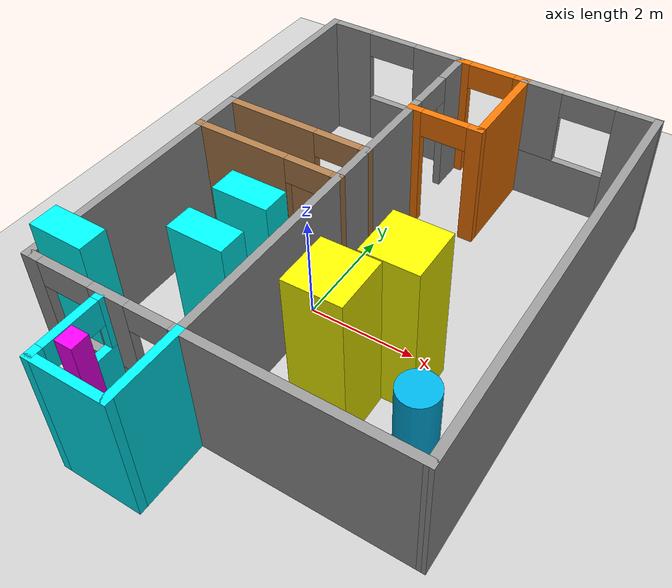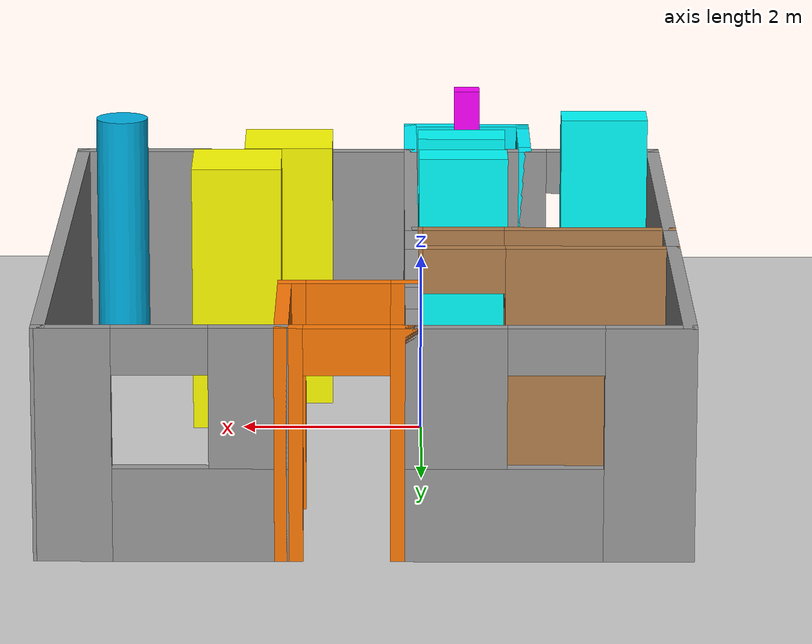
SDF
<sdf version="1.6">
 <world name="default">
  <model name="ground_plane">
   <static>1</static>
   <link name="link">
    <collision name="collision">
     <geometry><plane><normal>0 0 1</normal><size>100 100</size></plane></geometry>
     <surface><friction><ode><mu>100</mu><mu2>50</mu2></ode></friction></surface>
    </collision>
    <visual name="visual">
     <cast_shadows>0</cast_shadows>
     <geometry><plane><normal>0 0 1</normal><size>100 100</size></plane></geometry>
     <material>
      <script><uri>file://media/materials/scripts/gazebo.material</uri><name>Gazebo/Grey</name></script>
     </material>
    </visual>
   </link>
  </model>
  <model name="cozyapato">
   <pose>0.612099 0.24558 0 0 -0 0</pose>
   <link name="Wall_100">
    <collision name="Wall_100_Collision">
     <geometry><box><size>1.5 0.15 2.5</size></box></geometry>
     <pose>0 0 1.25 0 -0 0</pose>
    </collision>
    <visual name="Wall_100_Visual">
     <pose>0 0 1.25 0 -0 0</pose>
     <geometry><box><size>1.5 0.15 2.5</size></box></geometry>
     <material>
      <script><uri>file://media/materials/scripts/gazebo.material</uri><name>Gazebo/Grey</name></script>
      <ambient>0 0.952941 1 1</ambient>
     </material>
     <meta><layer>0</layer></meta>
    </visual>
    <pose>-0.499933 -4.02501 0 0 0 -1.5708</pose>
   </link>
   <link name="Wall_101">
    <collision name="Wall_101_Collision">
     <geometry><box><size>1.5 0.15 2.5</size></box></geometry>
     <pose>0 0 1.25 0 -0 0</pose>
    </collision>
    <visual name="Wall_101_Visual">
     <pose>0 0 1.25 0 -0 0</pose>
     <geometry><box><size>1.5 0.15 2.5</size></box></geometry>
     <material>
      <script><uri>file://media/materials/scripts/gazebo.material</uri><name>Gazebo/Grey</name></script>
      <ambient>0 0.952941 1 1</ambient>
     </material>
     <meta><layer>0</layer></meta>
    </visual>
    <pose>-1.17493 -4.70001 0 0 -0 3.14159</pose>
   </link>
   <link name="Wall_102">
    <pose>-1.84993 -4.02501 0 0 -0 1.5708</pose>
    <visual name="Wall_102_Visual_0">
     <pose>-0.623422 0 1.25 0 -0 0</pose>
     <geometry><box><size>0.253156 0.15 2.5</size></box></geometry>
     <material>
      <script><uri>file://media/materials/scripts/gazebo.material</uri><name>Gazebo/Grey</name></script>
      <ambient>0 0.952941 1 1</ambient>
     </material>
     <meta><layer>0</layer></meta>
    </visual>
    <collision name="Wall_102_Collision_0">
     <geometry><box><size>0.253156 0.15 2.5</size></box></geometry>
     <pose>-0.623422 0 1.25 0 -0 0</pose>
    </collision>
    <visual name="Wall_102_Visual_1">
     <pose>0.126578 0 0.75 0 -0 0</pose>
     <geometry><box><size>1.24684 0.15 1.5</size></box></geometry>
     <material>
      <script><uri>file://media/materials/scripts/gazebo.material</uri><name>Gazebo/Grey</name></script>
      <ambient>0 0.952941 1 1</ambient>
     </material>
     <meta><layer>0</layer></meta>
    </visual>
    <collision name="Wall_102_Collision_1">
     <geometry><box><size>1.24684 0.15 1.5</size></box></geometry>
     <pose>0.126578 0 0.75 0 -0 0</pose>
    </collision>
    <visual name="Wall_102_Visual_2">
     <pose>0.626578 0 2 0 -0 0</pose>
     <geometry><box><size>0.246844 0.15 1</size></box></geometry>
     <material>
      <script><uri>file://media/materials/scripts/gazebo.material</uri><name>Gazebo/Grey</name></script>
      <ambient>0 0.952941 1 1</ambient>
     </material>
     <meta><layer>0</layer></meta>
    </visual>
    <collision name="Wall_102_Collision_2">
     <geometry><box><size>0.246844 0.15 1</size></box></geometry>
     <pose>0.626578 0 2 0 -0 0</pose>
    </collision>
    <visual name="Wall_102_Visual_3">
     <pose>0.003156 0 2.25 0 -0 0</pose>
     <geometry><box><size>1 0.15 0.5</size></box></geometry>
     <material>
      <script><uri>file://media/materials/scripts/gazebo.material</uri><name>Gazebo/Grey</name></script>
      <ambient>0 0.952941 1 1</ambient>
     </material>
     <meta><layer>0</layer></meta>
    </visual>
    <collision name="Wall_102_Collision_3">
     <geometry><box><size>1 0.15 0.5</size></box></geometry>
     <pose>0.003156 0 2.25 0 -0 0</pose>
    </collision>
   </link>
   <link name="Wall_108">
    <pose>0.175067 4.7 0 0 -0 0</pose>
    <visual name="Wall_108_Visual_0">
     <pose>-0.599463 0 1.25 0 -0 0</pose>
     <geometry><box><size>0.301074 0.15 2.5</size></box></geometry>
     <material>
      <script><uri>file://media/materials/scripts/gazebo.material</uri><name>Gazebo/Grey</name></script>
      <ambient>0.996078 0.47451 0.0196078 1</ambient>
     </material>
     <meta><layer>0</layer></meta>
    </visual>
    <collision name="Wall_108_Collision_0">
     <geometry><box><size>0.301074 0.15 2.5</size></box></geometry>
     <pose>-0.599463 0 1.25 0 -0 0</pose>
    </collision>
    <visual name="Wall_108_Visual_1">
     <pose>0.600537 0 1.25 0 -0 0</pose>
     <geometry><box><size>0.298926 0.15 2.5</size></box></geometry>
     <material>
      <script><uri>file://media/materials/scripts/gazebo.material</uri><name>Gazebo/Grey</name></script>
      <ambient>0.996078 0.47451 0.0196078 1</ambient>
     </material>
     <meta><layer>0</layer></meta>
    </visual>
    <collision name="Wall_108_Collision_1">
     <geometry><box><size>0.298926 0.15 2.5</size></box></geometry>
     <pose>0.600537 0 1.25 0 -0 0</pose>
    </collision>
    <visual name="Wall_108_Visual_2">
     <pose>0.001074 0 2.25 0 -0 0</pose>
     <geometry><box><size>0.9 0.15 0.5</size></box></geometry>
     <material>
      <script><uri>file://media/materials/scripts/gazebo.material</uri><name>Gazebo/Grey</name></script>
      <ambient>0.996078 0.47451 0.0196078 1</ambient>
     </material>
     <meta><layer>0</layer></meta>
    </visual>
    <collision name="Wall_108_Collision_2">
     <geometry><box><size>0.9 0.15 0.5</size></box></geometry>
     <pose>0.001074 0 2.25 0 -0 0</pose>
    </collision>
   </link>
   <link name="Wall_109">
    <collision name="Wall_109_Collision">
     <geometry><box><size>2 0.15 2.5</size></box></geometry>
     <pose>0 0 1.25 0 -0 0</pose>
    </collision>
    <visual name="Wall_109_Visual">
     <pose>0 0 1.25 0 -0 0</pose>
     <geometry><box><size>2 0.15 2.5</size></box></geometry>
     <material>
      <script><uri>file://media/materials/scripts/gazebo.material</uri><name>Gazebo/Grey</name></script>
      <ambient>0.996078 0.47451 0.0196078 1</ambient>
     </material>
     <meta><layer>0</layer></meta>
    </visual>
    <pose>0.850067 3.77499 0 0 0 -1.5708</pose>
   </link>
   <link name="Wall_110">
    <pose>0.175067 2.84999 0 0 -0 3.14159</pose>
    <visual name="Wall_110_Visual_0">
     <pose>-0.600722 0 1.25 0 -0 0</pose>
     <geometry><box><size>0.298555 0.15 2.5</size></box></geometry>
     <material>
      <script><uri>file://media/materials/scripts/gazebo.material</uri><name>Gazebo/Grey</name></script>
      <ambient>0.996078 0.47451 0.0196078 1</ambient>
     </material>
     <meta><layer>0</layer></meta>
    </visual>
    <collision name="Wall_110_Collision_0">
     <geometry><box><size>0.298555 0.15 2.5</size></box></geometry>
     <pose>-0.600722 0 1.25 0 -0 0</pose>
    </collision>
    <visual name="Wall_110_Visual_1">
     <pose>0.599278 0 1.25 0 -0 0</pose>
     <geometry><box><size>0.301445 0.15 2.5</size></box></geometry>
     <material>
      <script><uri>file://media/materials/scripts/gazebo.material</uri><name>Gazebo/Grey</name></script>
      <ambient>0.996078 0.47451 0.0196078 1</ambient>
     </material>
     <meta><layer>0</layer></meta>
    </visual>
    <collision name="Wall_110_Collision_1">
     <geometry><box><size>0.301445 0.15 2.5</size></box></geometry>
     <pose>0.599278 0 1.25 0 -0 0</pose>
    </collision>
    <visual name="Wall_110_Visual_2">
     <pose>-0.001445 0 2.25 0 -0 0</pose>
     <geometry><box><size>0.9 0.15 0.5</size></box></geometry>
     <material>
      <script><uri>file://media/materials/scripts/gazebo.material</uri><name>Gazebo/Grey</name></script>
      <ambient>0.996078 0.47451 0.0196078 1</ambient>
     </material>
     <meta><layer>0</layer></meta>
    </visual>
    <collision name="Wall_110_Collision_2">
     <geometry><box><size>0.9 0.15 0.5</size></box></geometry>
     <pose>-0.001445 0 2.25 0 -0 0</pose>
    </collision>
   </link>
   <link name="Wall_112">
    <collision name="Wall_112_Collision">
     <geometry><box><size>3.99985 0.15 2.5</size></box></geometry>
     <pose>0 0 1.25 0 -0 0</pose>
    </collision>
    <visual name="Wall_112_Visual">
     <pose>0 0 1.25 0 -0 0</pose>
     <geometry><box><size>3.99985 0.15 2.5</size></box></geometry>
     <material>
      <script><uri>file://media/materials/scripts/gazebo.material</uri><name>Gazebo/Grey</name></script>
      <ambient>1 1 1 1</ambient>
     </material>
     <meta><layer>0</layer></meta>
    </visual>
    <pose>1.42499 -3.3502 0 0 0 -0.000101</pose>
   </link>
   <link name="Wall_113">
    <collision name="Wall_113_Collision">
     <geometry><box><size>8.2 0.15 2.5</size></box></geometry>
     <pose>0 0 1.25 0 -0 0</pose>
    </collision>
    <visual name="Wall_113_Visual">
     <pose>0 0 1.25 0 -0 0</pose>
     <geometry><box><size>8.2 0.15 2.5</size></box></geometry>
     <material>
      <script><uri>file://media/materials/scripts/gazebo.material</uri><name>Gazebo/Grey</name></script>
      <ambient>1 1 1 1</ambient>
     </material>
     <meta><layer>0</layer></meta>
    </visual>
    <pose>3.34992 0.674605 0 0 -0 1.5708</pose>
   </link>
   <link name="Wall_115">
    <pose>2.09999 4.6998 0 0 -0 3.14144</pose>
    <visual name="Wall_115_Visual_0">
     <pose>-0.912211 0 1.25 0 -0 0</pose>
     <geometry><box><size>0.825433 0.15 2.5</size></box></geometry>
     <material>
      <script><uri>file://media/materials/scripts/gazebo.material</uri><name>Gazebo/Grey</name></script>
      <ambient>1 1 1 1</ambient>
     </material>
     <meta><layer>0</layer></meta>
    </visual>
    <collision name="Wall_115_Collision_0">
     <geometry><box><size>0.825433 0.15 2.5</size></box></geometry>
     <pose>-0.912211 0 1.25 0 -0 0</pose>
    </collision>
    <visual name="Wall_115_Visual_1">
     <pose>0.412716 0 0.5 0 -0 0</pose>
     <geometry><box><size>1.82442 0.15 1</size></box></geometry>
     <material>
      <script><uri>file://media/materials/scripts/gazebo.material</uri><name>Gazebo/Grey</name></script>
      <ambient>1 1 1 1</ambient>
     </material>
     <meta><layer>0</layer></meta>
    </visual>
    <collision name="Wall_115_Collision_1">
     <geometry><box><size>1.82442 0.15 1</size></box></geometry>
     <pose>0.412716 0 0.5 0 -0 0</pose>
    </collision>
    <visual name="Wall_115_Visual_2">
     <pose>0.912716 0 1.75 0 -0 0</pose>
     <geometry><box><size>0.824421 0.15 1.5</size></box></geometry>
     <material>
      <script><uri>file://media/materials/scripts/gazebo.material</uri><name>Gazebo/Grey</name></script>
      <ambient>1 1 1 1</ambient>
     </material>
     <meta><layer>0</layer></meta>
    </visual>
    <collision name="Wall_115_Collision_2">
     <geometry><box><size>0.824421 0.15 1.5</size></box></geometry>
     <pose>0.912716 0 1.75 0 -0 0</pose>
    </collision>
    <visual name="Wall_115_Visual_3">
     <pose>0.000506 0 2.25 0 -0 0</pose>
     <geometry><box><size>1 0.15 0.5</size></box></geometry>
     <material>
      <script><uri>file://media/materials/scripts/gazebo.material</uri><name>Gazebo/Grey</name></script>
      <ambient>1 1 1 1</ambient>
     </material>
     <meta><layer>0</layer></meta>
    </visual>
    <collision name="Wall_115_Collision_3">
     <geometry><box><size>1 0.15 0.5</size></box></geometry>
     <pose>0.000506 0 2.25 0 -0 0</pose>
    </collision>
   </link>
   <link name="Wall_87">
    <pose>-1.92493 4.7 0 0 -0 0</pose>
    <visual name="Wall_87_Visual_0">
     <pose>-1.02631 0 1.25 0 -0 0</pose>
     <geometry><box><size>0.947379 0.15 2.5</size></box></geometry>
     <material>
      <script><uri>file://media/materials/scripts/gazebo.material</uri><name>Gazebo/Grey</name></script>
      <ambient>1 1 1 1</ambient>
     </material>
     <meta><layer>0</layer></meta>
    </visual>
    <collision name="Wall_87_Collision_0">
     <geometry><box><size>0.947379 0.15 2.5</size></box></geometry>
     <pose>-1.02631 0 1.25 0 -0 0</pose>
    </collision>
    <visual name="Wall_87_Visual_1">
     <pose>0.473689 0 0.5 0 -0 0</pose>
     <geometry><box><size>2.05262 0.15 1</size></box></geometry>
     <material>
      <script><uri>file://media/materials/scripts/gazebo.material</uri><name>Gazebo/Grey</name></script>
      <ambient>1 1 1 1</ambient>
     </material>
     <meta><layer>0</layer></meta>
    </visual>
    <collision name="Wall_87_Collision_1">
     <geometry><box><size>2.05262 0.15 1</size></box></geometry>
     <pose>0.473689 0 0.5 0 -0 0</pose>
    </collision>
    <visual name="Wall_87_Visual_2">
     <pose>0.973689 0 1.75 0 -0 0</pose>
     <geometry><box><size>1.05262 0.15 1.5</size></box></geometry>
     <material>
      <script><uri>file://media/materials/scripts/gazebo.material</uri><name>Gazebo/Grey</name></script>
      <ambient>1 1 1 1</ambient>
     </material>
     <meta><layer>0</layer></meta>
    </visual>
    <collision name="Wall_87_Collision_2">
     <geometry><box><size>1.05262 0.15 1.5</size></box></geometry>
     <pose>0.973689 0 1.75 0 -0 0</pose>
    </collision>
    <visual name="Wall_87_Visual_3">
     <pose>-0.052621 0 2.25 0 -0 0</pose>
     <geometry><box><size>1 0.15 0.5</size></box></geometry>
     <material>
      <script><uri>file://media/materials/scripts/gazebo.material</uri><name>Gazebo/Grey</name></script>
      <ambient>1 1 1 1</ambient>
     </material>
     <meta><layer>0</layer></meta>
    </visual>
    <collision name="Wall_87_Collision_3">
     <geometry><box><size>1 0.15 0.5</size></box></geometry>
     <pose>-0.052621 0 2.25 0 -0 0</pose>
    </collision>
   </link>
   <link name="Wall_88">
    <pose>-0.499933 3.02499 0 0 0 -1.5708</pose>
    <visual name="Wall_88_Visual_0">
     <pose>-1.35034 0 1.25 0 -0 0</pose>
     <geometry><box><size>0.799327 0.15 2.5</size></box></geometry>
     <material>
      <script><uri>file://media/materials/scripts/gazebo.material</uri><name>Gazebo/Grey</name></script>
      <ambient>1 1 1 1</ambient>
     </material>
     <meta><layer>0</layer></meta>
    </visual>
    <collision name="Wall_88_Collision_0">
     <geometry><box><size>0.799327 0.15 2.5</size></box></geometry>
     <pose>-1.35034 0 1.25 0 -0 0</pose>
    </collision>
    <visual name="Wall_88_Visual_1">
     <pose>0.849663 0 1.25 0 -0 0</pose>
     <geometry><box><size>1.80067 0.15 2.5</size></box></geometry>
     <material>
      <script><uri>file://media/materials/scripts/gazebo.material</uri><name>Gazebo/Grey</name></script>
      <ambient>1 1 1 1</ambient>
     </material>
     <meta><layer>0</layer></meta>
    </visual>
    <collision name="Wall_88_Collision_1">
     <geometry><box><size>1.80067 0.15 2.5</size></box></geometry>
     <pose>0.849663 0 1.25 0 -0 0</pose>
    </collision>
    <visual name="Wall_88_Visual_2">
     <pose>-0.500673 0 2.25 0 -0 0</pose>
     <geometry><box><size>0.9 0.15 0.5</size></box></geometry>
     <material>
      <script><uri>file://media/materials/scripts/gazebo.material</uri><name>Gazebo/Grey</name></script>
      <ambient>1 1 1 1</ambient>
     </material>
     <meta><layer>0</layer></meta>
    </visual>
    <collision name="Wall_88_Collision_2">
     <geometry><box><size>0.9 0.15 0.5</size></box></geometry>
     <pose>-0.500673 0 2.25 0 -0 0</pose>
    </collision>
   </link>
   <link name="Wall_89">
    <pose>-1.92493 1.34999 0 0 -0 3.14159</pose>
    <visual name="Wall_89_Visual_0">
     <pose>-1.4003 0 1.25 0 -0 0</pose>
     <geometry><box><size>0.199399 0.15 2.5</size></box></geometry>
     <material>
      <script><uri>file://media/materials/scripts/gazebo.material</uri><name>Gazebo/Wood</name></script>
      <ambient>1 1 1 1</ambient>
     </material>
     <meta><layer>0</layer></meta>
    </visual>
    <collision name="Wall_89_Collision_0">
     <geometry><box><size>0.199399 0.15 2.5</size></box></geometry>
     <pose>-1.4003 0 1.25 0 -0 0</pose>
    </collision>
    <visual name="Wall_89_Visual_1">
     <pose>0.549699 0 1.25 0 -0 0</pose>
     <geometry><box><size>1.9006 0.15 2.5</size></box></geometry>
     <material>
      <script><uri>file://media/materials/scripts/gazebo.material</uri><name>Gazebo/Wood</name></script>
      <ambient>1 1 1 1</ambient>
     </material>
     <meta><layer>0</layer></meta>
    </visual>
    <collision name="Wall_89_Collision_1">
     <geometry><box><size>1.9006 0.15 2.5</size></box></geometry>
     <pose>0.549699 0 1.25 0 -0 0</pose>
    </collision>
    <visual name="Wall_89_Visual_2">
     <pose>-0.850601 0 2.25 0 -0 0</pose>
     <geometry><box><size>0.9 0.15 0.5</size></box></geometry>
     <material>
      <script><uri>file://media/materials/scripts/gazebo.material</uri><name>Gazebo/Wood</name></script>
      <ambient>1 1 1 1</ambient>
     </material>
     <meta><layer>0</layer></meta>
    </visual>
    <collision name="Wall_89_Collision_2">
     <geometry><box><size>0.9 0.15 0.5</size></box></geometry>
     <pose>-0.850601 0 2.25 0 -0 0</pose>
    </collision>
   </link>
   <link name="Wall_90">
    <collision name="Wall_90_Collision">
     <geometry><box><size>3.5 0.15 2.5</size></box></geometry>
     <pose>0 0 1.25 0 -0 0</pose>
    </collision>
    <visual name="Wall_90_Visual">
     <pose>0 0 1.25 0 -0 0</pose>
     <geometry><box><size>3.5 0.15 2.5</size></box></geometry>
     <material>
      <script><uri>file://media/materials/scripts/gazebo.material</uri><name>Gazebo/Grey</name></script>
      <ambient>1 1 1 1</ambient>
     </material>
     <meta><layer>0</layer></meta>
    </visual>
    <pose>-3.34993 3.02499 0 0 -0 1.5708</pose>
   </link>
   <link name="Wall_92">
    <collision name="Wall_92_Collision">
     <geometry><box><size>1 0.15 2.5</size></box></geometry>
     <pose>0 0 1.25 0 -0 0</pose>
    </collision>
    <visual name="Wall_92_Visual">
     <pose>0 0 1.25 0 -0 0</pose>
     <geometry><box><size>1 0.15 2.5</size></box></geometry>
     <material>
      <script><uri>file://media/materials/scripts/gazebo.material</uri><name>Gazebo/Grey</name></script>
      <ambient>1 1 1 1</ambient>
     </material>
     <meta><layer>0</layer></meta>
    </visual>
    <pose>-3.34993 0.924994 0 0 0 -1.5708</pose>
   </link>
   <link name="Wall_93">
    <pose>-1.92493 0.499994 0 0 -0 0</pose>
    <visual name="Wall_93_Visual_0">
     <pose>-0.551343 0 1.25 0 -0 0</pose>
     <geometry><box><size>1.89731 0.15 2.5</size></box></geometry>
     <material>
      <script><uri>file://media/materials/scripts/gazebo.material</uri><name>Gazebo/Wood</name></script>
      <ambient>1 1 1 1</ambient>
     </material>
     <meta><layer>0</layer></meta>
    </visual>
    <collision name="Wall_93_Collision_0">
     <geometry><box><size>1.89731 0.15 2.5</size></box></geometry>
     <pose>-0.551343 0 1.25 0 -0 0</pose>
    </collision>
    <visual name="Wall_93_Visual_1">
     <pose>1.39866 0 1.25 0 -0 0</pose>
     <geometry><box><size>0.202686 0.15 2.5</size></box></geometry>
     <material>
      <script><uri>file://media/materials/scripts/gazebo.material</uri><name>Gazebo/Wood</name></script>
      <ambient>1 1 1 1</ambient>
     </material>
     <meta><layer>0</layer></meta>
    </visual>
    <collision name="Wall_93_Collision_1">
     <geometry><box><size>0.202686 0.15 2.5</size></box></geometry>
     <pose>1.39866 0 1.25 0 -0 0</pose>
    </collision>
    <visual name="Wall_93_Visual_2">
     <pose>0.847314 0 2.25 0 -0 0</pose>
     <geometry><box><size>0.9 0.15 0.5</size></box></geometry>
     <material>
      <script><uri>file://media/materials/scripts/gazebo.material</uri><name>Gazebo/Wood</name></script>
      <ambient>1 1 1 1</ambient>
     </material>
     <meta><layer>0</layer></meta>
    </visual>
    <collision name="Wall_93_Collision_2">
     <geometry><box><size>0.9 0.15 0.5</size></box></geometry>
     <pose>0.847314 0 2.25 0 -0 0</pose>
    </collision>
   </link>
   <link name="Wall_94">
    <collision name="Wall_94_Collision">
     <geometry><box><size>1 0.15 2.5</size></box></geometry>
     <pose>0 0 1.25 0 -0 0</pose>
    </collision>
    <visual name="Wall_94_Visual">
     <pose>0 0 1.25 0 -0 0</pose>
     <geometry><box><size>1 0.15 2.5</size></box></geometry>
     <material>
      <script><uri>file://media/materials/scripts/gazebo.material</uri><name>Gazebo/Grey</name></script>
      <ambient>1 1 1 1</ambient>
     </material>
     <meta><layer>0</layer></meta>
    </visual>
    <pose>-0.499933 0.924994 0 0 -0 1.5708</pose>
   </link>
   <link name="Wall_96">
    <collision name="Wall_96_Collision">
     <geometry><box><size>4 0.15 2.5</size></box></geometry>
     <pose>0 0 1.25 0 -0 0</pose>
    </collision>
    <visual name="Wall_96_Visual">
     <pose>0 0 1.25 0 -0 0</pose>
     <geometry><box><size>4 0.15 2.5</size></box></geometry>
     <material>
      <script><uri>file://media/materials/scripts/gazebo.material</uri><name>Gazebo/Grey</name></script>
      <ambient>1 1 1 1</ambient>
     </material>
     <meta><layer>0</layer></meta>
    </visual>
    <pose>-3.34993 -1.42501 0 0 0 -1.5708</pose>
   </link>
   <link name="Wall_97">
    <pose>-1.92493 -3.35001 0 0 -0 0</pose>
    <visual name="Wall_97_Visual_0">
     <pose>-1.33807 0 1.25 0 -0 0</pose>
     <geometry><box><size>0.323858 0.15 2.5</size></box></geometry>
     <material>
      <script><uri>file://media/materials/scripts/gazebo.material</uri><name>Gazebo/Grey</name></script>
      <ambient>1 1 1 1</ambient>
     </material>
     <meta><layer>0</layer></meta>
    </visual>
    <collision name="Wall_97_Collision_0">
     <geometry><box><size>0.323858 0.15 2.5</size></box></geometry>
     <pose>-1.33807 0 1.25 0 -0 0</pose>
    </collision>
    <visual name="Wall_97_Visual_1">
     <pose>1.40031 0 1.25 0 -0 0</pose>
     <geometry><box><size>0.199375 0.15 2.5</size></box></geometry>
     <material>
      <script><uri>file://media/materials/scripts/gazebo.material</uri><name>Gazebo/Grey</name></script>
      <ambient>1 1 1 1</ambient>
     </material>
     <meta><layer>0</layer></meta>
    </visual>
    <collision name="Wall_97_Collision_1">
     <geometry><box><size>0.199375 0.15 2.5</size></box></geometry>
     <pose>1.40031 0 1.25 0 -0 0</pose>
    </collision>
    <visual name="Wall_97_Visual_2">
     <pose>-0.337758 0 0.5 0 -0 0</pose>
     <geometry><box><size>1.67677 0.15 1</size></box></geometry>
     <material>
      <script><uri>file://media/materials/scripts/gazebo.material</uri><name>Gazebo/Grey</name></script>
      <ambient>1 1 1 1</ambient>
     </material>
     <meta><layer>0</layer></meta>
    </visual>
    <collision name="Wall_97_Collision_2">
     <geometry><box><size>1.67677 0.15 1</size></box></geometry>
     <pose>-0.337758 0 0.5 0 -0 0</pose>
    </collision>
    <visual name="Wall_97_Visual_3">
     <pose>0.162242 0 1.75 0 -0 0</pose>
     <geometry><box><size>0.676767 0.15 1.5</size></box></geometry>
     <material>
      <script><uri>file://media/materials/scripts/gazebo.material</uri><name>Gazebo/Grey</name></script>
      <ambient>1 1 1 1</ambient>
     </material>
     <meta><layer>0</layer></meta>
    </visual>
    <collision name="Wall_97_Collision_3">
     <geometry><box><size>0.676767 0.15 1.5</size></box></geometry>
     <pose>0.162242 0 1.75 0 -0 0</pose>
    </collision>
    <visual name="Wall_97_Visual_4">
     <pose>-0.676142 0 2.25 0 -0 0</pose>
     <geometry><box><size>1 0.15 0.5</size></box></geometry>
     <material>
      <script><uri>file://media/materials/scripts/gazebo.material</uri><name>Gazebo/Grey</name></script>
      <ambient>1 1 1 1</ambient>
     </material>
     <meta><layer>0</layer></meta>
    </visual>
    <collision name="Wall_97_Collision_4">
     <geometry><box><size>1 0.15 0.5</size></box></geometry>
     <pose>-0.676142 0 2.25 0 -0 0</pose>
    </collision>
    <visual name="Wall_97_Visual_5">
     <pose>0.900625 0 2.25 0 -0 0</pose>
     <geometry><box><size>0.8 0.15 0.5</size></box></geometry>
     <material>
      <script><uri>file://media/materials/scripts/gazebo.material</uri><name>Gazebo/Grey</name></script>
      <ambient>1 1 1 1</ambient>
     </material>
     <meta><layer>0</layer></meta>
    </visual>
    <collision name="Wall_97_Collision_5">
     <geometry><box><size>0.8 0.15 0.5</size></box></geometry>
     <pose>0.900625 0 2.25 0 -0 0</pose>
    </collision>
   </link>
   <link name="Wall_98">
    <collision name="Wall_98_Collision">
     <geometry><box><size>4 0.15 2.5</size></box></geometry>
     <pose>0 0 1.25 0 -0 0</pose>
    </collision>
    <visual name="Wall_98_Visual">
     <pose>0 0 1.25 0 -0 0</pose>
     <geometry><box><size>4 0.15 2.5</size></box></geometry>
     <material>
      <script><uri>file://media/materials/scripts/gazebo.material</uri><name>Gazebo/Grey</name></script>
      <ambient>1 1 1 1</ambient>
     </material>
     <meta><layer>0</layer></meta>
    </visual>
    <pose>-0.499933 -1.42501 0 0 -0 1.5708</pose>
   </link>
   <static>1</static>
  </model>
  <model name="cyl_tall_green">
   <link name="link">
    <inertial>
     <mass>1</mass>
     <inertia><ixx>0.145833</ixx><ixy>0</ixy><ixz>0</ixz><iyy>0.145833</iyy><iyz>0</iyz><izz>0.125</izz></inertia>
    </inertial>
    <visual name="visual">
     <geometry><cylinder><radius>0.3</radius><length>3</length></cylinder></geometry>
     <material>
      <script><name>Gazebo/Grey</name><uri>file://media/materials/scripts/gazebo.material</uri></script>
      <shader type="pixel"><normal_map>__default__</normal_map></shader>
      <ambient>0 1 1 1</ambient>
      <diffuse>0 0.7 0.9 1</diffuse>
      <specular>0 0.01 0.03 1</specular>
      <emissive>0 0 0 1</emissive>
     </material>
    </visual>
    <collision name="collision">
     <geometry><cylinder><radius>0.3</radius><length>3</length></cylinder></geometry>
     <surface>
      <friction>
       <ode><mu>1</mu><mu2>1</mu2><fdir1>0 0 0</fdir1><slip1>0</slip1><slip2>0</slip2></ode>
       <torsional>
        <coefficient>1</coefficient>
        <patch_radius>0</patch_radius>
        <surface_radius>0</surface_radius>
        <use_patch_radius>1</use_patch_radius>
        <ode><slip>0</slip></ode>
       </torsional>
      </friction>
      <bounce><restitution_coefficient>0</restitution_coefficient><threshold>1e+06</threshold></bounce>
      <contact>
       <collide_without_contact>0</collide_without_contact>
       <collide_without_contact_bitmask>1</collide_without_contact_bitmask>
       <collide_bitmask>1</collide_bitmask>
       <ode>
        <soft_cfm>0</soft_cfm>
        <soft_erp>0.2</soft_erp>
        <kp>1e+13</kp>
        <kd>1</kd>
        <max_vel>0.01</max_vel>
        <min_depth>0</min_depth>
       </ode>
       <bullet>
        <split_impulse>1</split_impulse>
        <split_impulse_penetration_threshold>-0.01</split_impulse_penetration_threshold>
        <soft_cfm>0</soft_cfm>
        <soft_erp>0.2</soft_erp>
        <kp>1e+13</kp>
        <kd>1</kd>
       </bullet>
      </contact>
     </surface>
    </collision>
   </link>
   <static>0</static>
   <pose>3.47937 -2.60312 1.5 0 -0 0.000699</pose>
  </model>
  <model name="tall_narrow_cyan_box_clone">
   <link name="link">
    <pose>0 -0 1.5 0 -0 0</pose>
    <inertial>
     <mass>1</mass>
     <inertia>
      <ixx>0.166667</ixx>
      <ixy>0</ixy>
      <ixz>0</ixz>
      <iyy>0.166667</iyy>
      <iyz>0</iyz>
      <izz>0.166667</izz>
     </inertia>
    </inertial>
    <visual name="visual">
     <geometry><box><size>1 0.5 3</size></box></geometry>
     <material>
      <script><name>Gazebo/Grey</name><uri>file://media/materials/scripts/gazebo.material</uri></script>
      <shader type="pixel"><normal_map>__default__</normal_map></shader>
      <ambient>0.3 1 1 1</ambient>
      <diffuse>0 1 1 1</diffuse>
      <specular>0 0.5 0.5 1</specular>
      <emissive>0 0 0 1</emissive>
     </material>
    </visual>
    <collision name="collision">
     <geometry><box><size>1 0.5 3</size></box></geometry>
     <surface>
      <friction>
       <ode><mu>1</mu><mu2>1</mu2><fdir1>0 0 0</fdir1><slip1>0</slip1><slip2>0</slip2></ode>
       <torsional>
        <coefficient>1</coefficient>
        <patch_radius>0</patch_radius>
        <surface_radius>0</surface_radius>
        <use_patch_radius>1</use_patch_radius>
        <ode><slip>0</slip></ode>
       </torsional>
      </friction>
      <bounce><restitution_coefficient>0</restitution_coefficient><threshold>1e+06</threshold></bounce>
      <contact>
       <collide_without_contact>0</collide_without_contact>
       <collide_without_contact_bitmask>1</collide_without_contact_bitmask>
       <collide_bitmask>1</collide_bitmask>
       <ode>
        <soft_cfm>0</soft_cfm>
        <soft_erp>0.2</soft_erp>
        <kp>1e+13</kp>
        <kd>1</kd>
        <max_vel>0.01</max_vel>
        <min_depth>0</min_depth>
       </ode>
       <bullet>
        <split_impulse>1</split_impulse>
        <split_impulse_penetration_threshold>-0.01</split_impulse_penetration_threshold>
        <soft_cfm>0</soft_cfm>
        <soft_erp>0.2</soft_erp>
        <kp>1e+13</kp>
        <kd>1</kd>
       </bullet>
      </contact>
     </surface>
    </collision>
   </link>
   <static>0</static>
   <pose>-0.469449 -1.75843 0 0 0 -0.008369</pose>
  </model>
  <model name="tall_skinny_purple_box_clone">
   <link name="link">
    <pose>0 0 1.5 0 -0 0</pose>
    <inertial>
     <mass>1</mass>
     <inertia>
      <ixx>0.166667</ixx>
      <ixy>0</ixy>
      <ixz>0</ixz>
      <iyy>0.166667</iyy>
      <iyz>0</iyz>
      <izz>0.166667</izz>
     </inertia>
    </inertial>
    <visual name="visual">
     <geometry><box><size>0.3 0.3 3</size></box></geometry>
     <material>
      <script><name>Gazebo/Grey</name><uri>file://media/materials/scripts/gazebo.material</uri></script>
      <shader type="pixel"><normal_map>__default__</normal_map></shader>
      <ambient>1 0 1 1</ambient>
      <diffuse>1 0 1 1</diffuse>
      <specular>0.5 0 0.5 1</specular>
      <emissive>0 0 0 1</emissive>
     </material>
    </visual>
    <collision name="collision">
     <geometry><box><size>0.3 0.3 3</size></box></geometry>
     <surface>
      <friction>
       <ode><mu>1</mu><mu2>1</mu2><fdir1>0 0 0</fdir1><slip1>0</slip1><slip2>0</slip2></ode>
       <torsional>
        <coefficient>1</coefficient>
        <patch_radius>0</patch_radius>
        <surface_radius>0</surface_radius>
        <use_patch_radius>1</use_patch_radius>
        <ode><slip>0</slip></ode>
       </torsional>
      </friction>
      <bounce><restitution_coefficient>0</restitution_coefficient><threshold>1e+06</threshold></bounce>
      <contact>
       <collide_without_contact>0</collide_without_contact>
       <collide_without_contact_bitmask>1</collide_without_contact_bitmask>
       <collide_bitmask>1</collide_bitmask>
       <ode>
        <soft_cfm>0</soft_cfm>
        <soft_erp>0.2</soft_erp>
        <kp>1e+13</kp>
        <kd>1</kd>
        <max_vel>0.01</max_vel>
        <min_depth>0</min_depth>
       </ode>
       <bullet>
        <split_impulse>1</split_impulse>
        <split_impulse_penetration_threshold>-0.01</split_impulse_penetration_threshold>
        <soft_cfm>0</soft_cfm>
        <soft_erp>0.2</soft_erp>
        <kp>1e+13</kp>
        <kd>1</kd>
       </bullet>
      </contact>
     </surface>
    </collision>
   </link>
   <static>0</static>
   <pose>-0.564415 -4.19775 0 0 0 -0.000353</pose>
  </model>
  <model name="tall_narrow_cyan_box_clone_0">
   <link name="link">
    <pose>0 -0 1.5 0 -0 0</pose>
    <inertial>
     <mass>1</mass>
     <inertia>
      <ixx>0.166667</ixx>
      <ixy>0</ixy>
      <ixz>0</ixz>
      <iyy>0.166667</iyy>
      <iyz>0</iyz>
      <izz>0.166667</izz>
     </inertia>
    </inertial>
    <visual name="visual">
     <geometry><box><size>1 0.5 3</size></box></geometry>
     <material>
      <script><name>Gazebo/Grey</name><uri>file://media/materials/scripts/gazebo.material</uri></script>
      <shader type="pixel"><normal_map>__default__</normal_map></shader>
      <ambient>0.3 1 1 1</ambient>
      <diffuse>0 1 1 1</diffuse>
      <specular>0 0.5 0.5 1</specular>
      <emissive>0 0 0 1</emissive>
     </material>
    </visual>
    <collision name="collision">
     <geometry><box><size>1 0.5 3</size></box></geometry>
     <surface>
      <friction>
       <ode><mu>1</mu><mu2>1</mu2><fdir1>0 0 0</fdir1><slip1>0</slip1><slip2>0</slip2></ode>
       <torsional>
        <coefficient>1</coefficient>
        <patch_radius>0</patch_radius>
        <surface_radius>0</surface_radius>
        <use_patch_radius>1</use_patch_radius>
        <ode><slip>0</slip></ode>
       </torsional>
      </friction>
      <bounce><restitution_coefficient>0</restitution_coefficient><threshold>1e+06</threshold></bounce>
      <contact>
       <collide_without_contact>0</collide_without_contact>
       <collide_without_contact_bitmask>1</collide_without_contact_bitmask>
       <collide_bitmask>1</collide_bitmask>
       <ode>
        <soft_cfm>0</soft_cfm>
        <soft_erp>0.2</soft_erp>
        <kp>1e+13</kp>
        <kd>1</kd>
        <max_vel>0.01</max_vel>
        <min_depth>0</min_depth>
       </ode>
       <bullet>
        <split_impulse>1</split_impulse>
        <split_impulse_penetration_threshold>-0.01</split_impulse_penetration_threshold>
        <soft_cfm>0</soft_cfm>
        <soft_erp>0.2</soft_erp>
        <kp>1e+13</kp>
        <kd>1</kd>
       </bullet>
      </contact>
     </surface>
    </collision>
   </link>
   <static>0</static>
   <pose>-0.479862 -0.736235 0 0 0 -3.13766</pose>
  </model>
  <model name="tall_narrow_cyan_box_clone_clone">
   <link name="link">
    <pose>0 -0 1.5 0 -0 0</pose>
    <inertial>
     <mass>1</mass>
     <inertia>
      <ixx>0.166667</ixx>
      <ixy>0</ixy>
      <ixz>0</ixz>
      <iyy>0.166667</iyy>
      <iyz>0</iyz>
      <izz>0.166667</izz>
     </inertia>
    </inertial>
    <visual name="visual">
     <geometry><box><size>1 0.5 3</size></box></geometry>
     <material>
      <script><name>Gazebo/Grey</name><uri>file://media/materials/scripts/gazebo.material</uri></script>
      <shader type="pixel"><normal_map>__default__</normal_map></shader>
      <ambient>0.3 1 1 1</ambient>
      <diffuse>0 1 1 1</diffuse>
      <specular>0 0.5 0.5 1</specular>
      <emissive>0 0 0 1</emissive>
     </material>
    </visual>
    <collision name="collision">
     <geometry><box><size>1 0.5 3</size></box></geometry>
     <surface>
      <friction>
       <ode><mu>1</mu><mu2>1</mu2><fdir1>0 0 0</fdir1><slip1>0</slip1><slip2>0</slip2></ode>
       <torsional>
        <coefficient>1</coefficient>
        <patch_radius>0</patch_radius>
        <surface_radius>0</surface_radius>
        <use_patch_radius>1</use_patch_radius>
        <ode><slip>0</slip></ode>
       </torsional>
      </friction>
      <bounce><restitution_coefficient>0</restitution_coefficient><threshold>1e+06</threshold></bounce>
      <contact>
       <collide_without_contact>0</collide_without_contact>
       <collide_without_contact_bitmask>1</collide_without_contact_bitmask>
       <collide_bitmask>1</collide_bitmask>
       <ode>
        <soft_cfm>0</soft_cfm>
        <soft_erp>0.2</soft_erp>
        <kp>1e+13</kp>
        <kd>1</kd>
        <max_vel>0.01</max_vel>
        <min_depth>0</min_depth>
       </ode>
       <bullet>
        <split_impulse>1</split_impulse>
        <split_impulse_penetration_threshold>-0.01</split_impulse_penetration_threshold>
        <soft_cfm>0</soft_cfm>
        <soft_erp>0.2</soft_erp>
        <kp>1e+13</kp>
        <kd>1</kd>
       </bullet>
      </contact>
     </surface>
    </collision>
   </link>
   <static>0</static>
   <pose>-2.14948 -2.7468 -8e-06 0 0 -0.008341</pose>
  </model>
  <model name="orange_tall_box_clone_clone">
   <link name="link">
    <pose>-0.180811 0.689421 1.5 0 -0 0</pose>
    <inertial>
     <mass>100</mass>
     <inertia>
      <ixx>0.166667</ixx>
      <ixy>0</ixy>
      <ixz>0</ixz>
      <iyy>0.166667</iyy>
      <iyz>0</iyz>
      <izz>0.166667</izz>
     </inertia>
    </inertial>
    <visual name="visual">
     <geometry><box><size>1 1 3</size></box></geometry>
     <material>
      <script><name>Gazebo/Grey</name><uri>file://media/materials/scripts/gazebo.material</uri></script>
      <shader type="pixel"><normal_map>__default__</normal_map></shader>
      <ambient>1 1 0 1</ambient>
      <diffuse>1 1 0 1</diffuse>
      <specular>0.5 0.5 0 1</specular>
      <emissive>0 0 0 1</emissive>
     </material>
    </visual>
    <collision name="collision">
     <geometry><box><size>1 1 3</size></box></geometry>
     <surface>
      <friction>
       <ode><mu>1</mu><mu2>1</mu2><fdir1>0 0 0</fdir1><slip1>0</slip1><slip2>0</slip2></ode>
       <torsional>
        <coefficient>1</coefficient>
        <patch_radius>0</patch_radius>
        <surface_radius>0</surface_radius>
        <use_patch_radius>1</use_patch_radius>
        <ode><slip>0</slip></ode>
       </torsional>
      </friction>
      <bounce><restitution_coefficient>0</restitution_coefficient><threshold>1e+06</threshold></bounce>
      <contact>
       <collide_without_contact>0</collide_without_contact>
       <collide_without_contact_bitmask>1</collide_without_contact_bitmask>
       <collide_bitmask>1</collide_bitmask>
       <ode>
        <soft_cfm>0</soft_cfm>
        <soft_erp>0.2</soft_erp>
        <kp>1e+13</kp>
        <kd>1</kd>
        <max_vel>0.01</max_vel>
        <min_depth>0</min_depth>
       </ode>
       <bullet>
        <split_impulse>1</split_impulse>
        <split_impulse_penetration_threshold>-0.01</split_impulse_penetration_threshold>
        <soft_cfm>0</soft_cfm>
        <soft_erp>0.2</soft_erp>
        <kp>1e+13</kp>
        <kd>1</kd>
       </bullet>
      </contact>
     </surface>
    </collision>
   </link>
   <static>0</static>
   <pose>1.38583 -0.668998 -9e-06 1e-06 1.2e-05 -1.5612</pose>
  </model>
  <model name="orange_tall_box_clone_clone_0">
   <link name="link">
    <pose>-0.180811 0.689421 1.5 0 -0 0</pose>
    <inertial>
     <mass>100</mass>
     <inertia>
      <ixx>0.166667</ixx>
      <ixy>0</ixy>
      <ixz>0</ixz>
      <iyy>0.166667</iyy>
      <iyz>0</iyz>
      <izz>0.166667</izz>
     </inertia>
    </inertial>
    <visual name="visual">
     <geometry><box><size>1 1 3</size></box></geometry>
     <material>
      <script><name>Gazebo/Grey</name><uri>file://media/materials/scripts/gazebo.material</uri></script>
      <shader type="pixel"><normal_map>__default__</normal_map></shader>
      <ambient>1 1 0 1</ambient>
      <diffuse>1 1 0 1</diffuse>
      <specular>0.5 0.5 0 1</specular>
      <emissive>0 0 0 1</emissive>
     </material>
    </visual>
    <collision name="collision">
     <geometry><box><size>1 1 3</size></box></geometry>
     <surface>
      <friction>
       <ode><mu>1</mu><mu2>1</mu2><fdir1>0 0 0</fdir1><slip1>0</slip1><slip2>0</slip2></ode>
       <torsional>
        <coefficient>1</coefficient>
        <patch_radius>0</patch_radius>
        <surface_radius>0</surface_radius>
        <use_patch_radius>1</use_patch_radius>
        <ode><slip>0</slip></ode>
       </torsional>
      </friction>
      <bounce><restitution_coefficient>0</restitution_coefficient><threshold>1e+06</threshold></bounce>
      <contact>
       <collide_without_contact>0</collide_without_contact>
       <collide_without_contact_bitmask>1</collide_without_contact_bitmask>
       <collide_bitmask>1</collide_bitmask>
       <ode>
        <soft_cfm>0</soft_cfm>
        <soft_erp>0.2</soft_erp>
        <kp>1e+13</kp>
        <kd>1</kd>
        <max_vel>0.01</max_vel>
        <min_depth>0</min_depth>
       </ode>
       <bullet>
        <split_impulse>1</split_impulse>
        <split_impulse_penetration_threshold>-0.01</split_impulse_penetration_threshold>
        <soft_cfm>0</soft_cfm>
        <soft_erp>0.2</soft_erp>
        <kp>1e+13</kp>
        <kd>1</kd>
       </bullet>
      </contact>
     </surface>
    </collision>
   </link>
   <static>0</static>
   <pose>0.820497 -1.69895 -9e-06 -1e-06 1.2e-05 -1.5611</pose>
  </model>
 </world>
</sdf>
